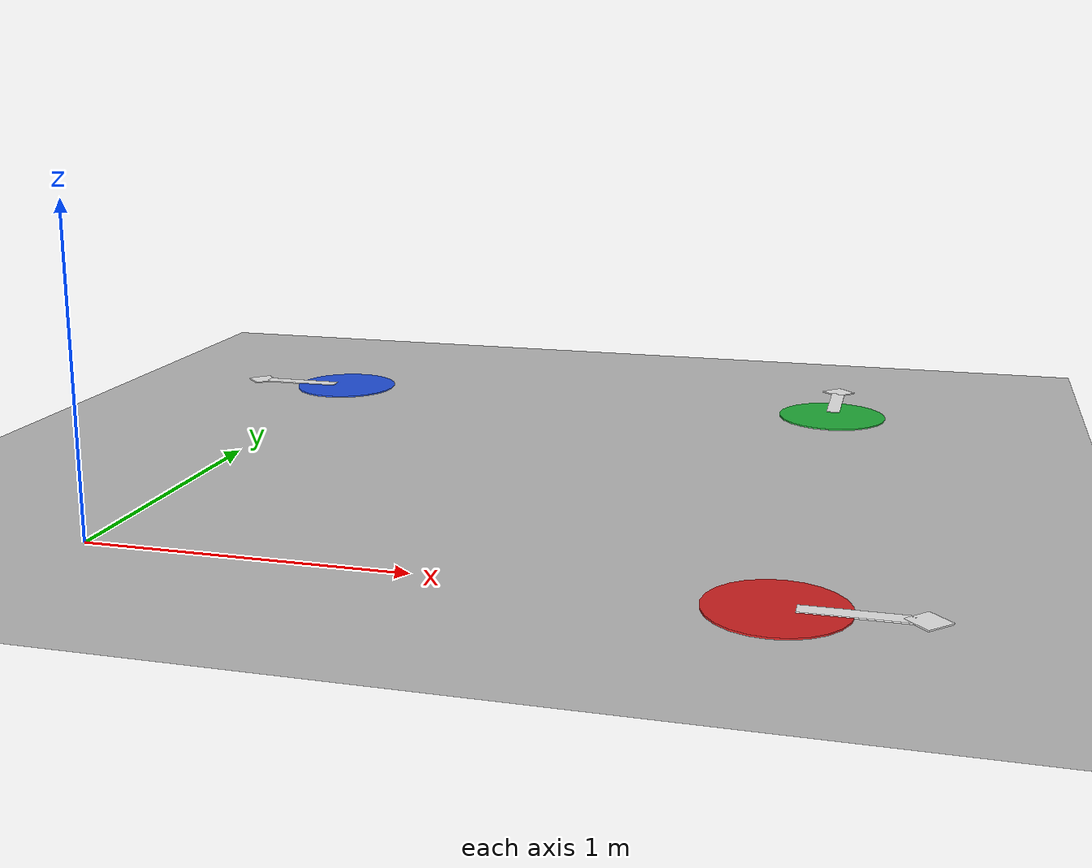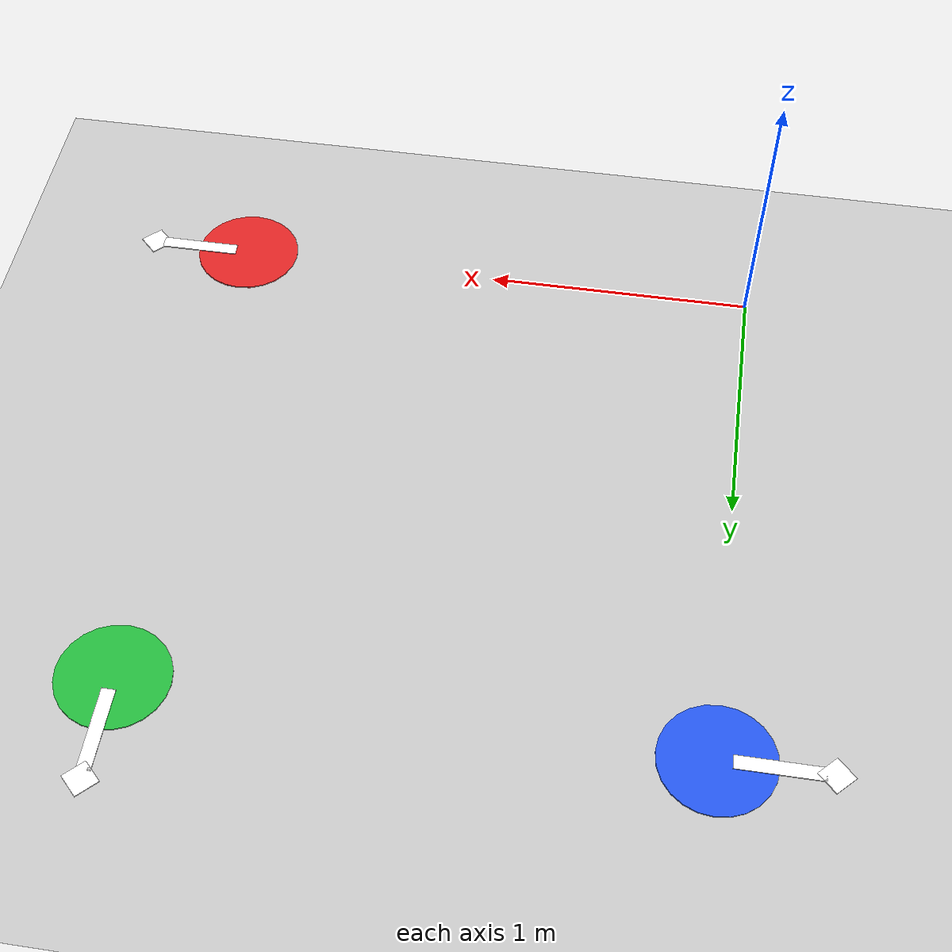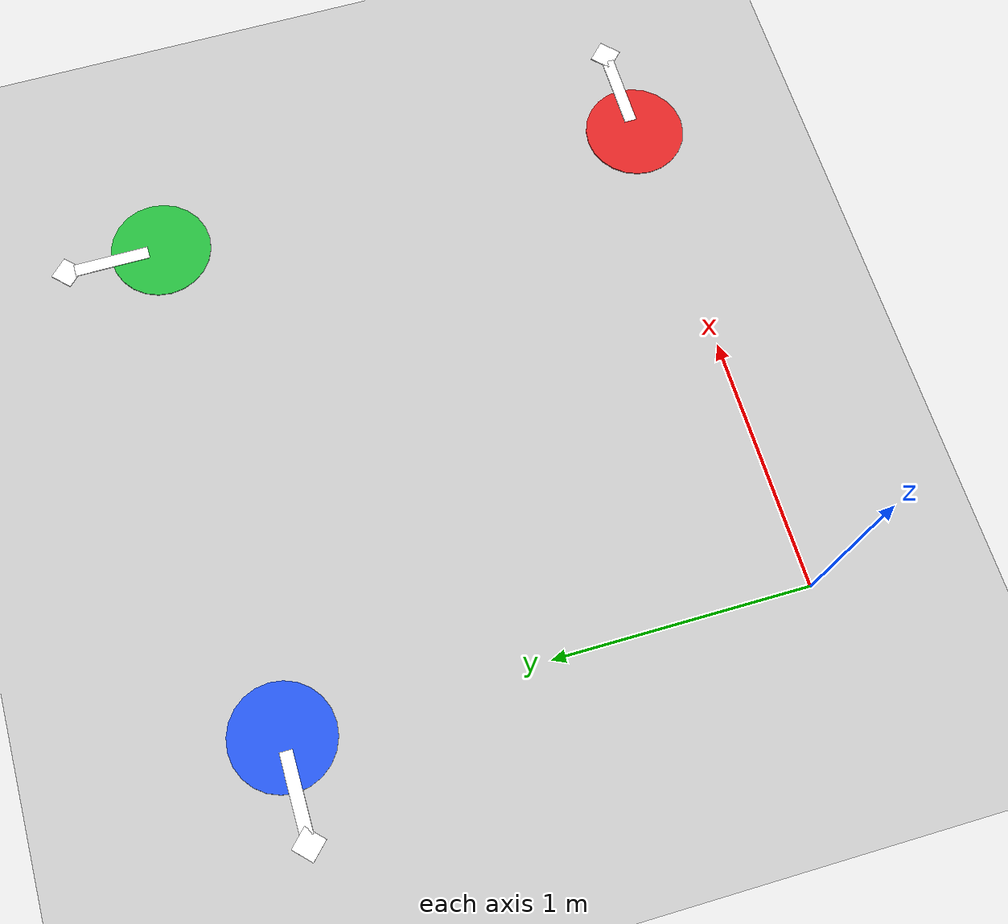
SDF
<?xml version="1.0" ?>
<sdf version="1.6">
  <world name="gp2">
    <physics name="1ms" type="ignored">
      <max_step_size>0.004</max_step_size>
      <real_time_factor>1.0</real_time_factor>
    </physics>

    <plugin filename="gz-sim-contact-system" name="gz::sim::systems::Contact" />
    <plugin filename="gz-sim-imu-system" name="gz::sim::systems::Imu" />
    <plugin filename="gz-sim-physics-system" name="gz::sim::systems::Physics" />
    <plugin filename="gz-sim-scene-broadcaster-system" name="gz::sim::systems::SceneBroadcaster" />
    <plugin filename="gz-sim-sensors-system" name="gz::sim::systems::Sensors" />
    <plugin filename="gz-sim-user-commands-system" name="gz::sim::systems::UserCommands" />

    <spherical_coordinates>
      <surface_model>EARTH_WGS84</surface_model>
      <world_frame_orientation>ENU</world_frame_orientation>
      <latitude_deg>50.088384</latitude_deg>
      <longitude_deg>19.939128</longitude_deg>
      <elevation>0</elevation>
      <heading_deg>0</heading_deg>
    </spherical_coordinates>

    <light type="directional" name="sun">
      <cast_shadows>true</cast_shadows>
      <pose>0 0 10 0 0 0</pose>
      <diffuse>0.8 0.8 0.8 1</diffuse>
      <specular>0.2 0.2 0.2 1</specular>
      <attenuation>
        <range>1000</range>
        <constant>0.9</constant>
        <linear>0.01</linear>
        <quadratic>0.001</quadratic>
      </attenuation>
      <direction>-0.5 0.1 -0.9</direction>
    </light>

    <model name="ground_plane">
      <static>true</static>
      <link name="link">
        <collision name="collision">
          <geometry>
            <plane>
              <normal>0 0 1</normal>
              <size>100 100</size>
            </plane>
          </geometry>
        </collision>
        <visual name="visual">
          <geometry>
            <plane>
              <normal>0 0 1</normal>
              <size>100 100</size>
            </plane>
          </geometry>
          <material>
            <ambient>0.8 0.8 0.8 1</ambient>
            <diffuse>0.8 0.8 0.8 1</diffuse>
            <specular>0.8 0.8 0.8 1</specular>
          </material>
        </visual>
      </link>
    </model>

    <!-- Goal markers (visual only, no collision).                         -->
    <!-- Each marker's link pose is (goal_x, goal_y, 0, 0, 0, heading),    -->
    <!-- so the arrow (authored along the marker's local +X) always        -->
    <!-- points toward the goal's final_heading.                           -->
    <!--   Goal 1: (2.0, 0.0, heading=0.0)    red                          -->
    <!--   Goal 2: (2.0, 2.0, heading=pi/2)   green                        -->
    <!--   Goal 3: (0.0, 2.0, heading=pi)     blue                         -->

    <model name="goal_marker_1">
      <static>true</static>
      <link name="link">
        <pose>2.0 0.0 0.0 0.0 0.0 0.0</pose>
        <!-- Disk (target base) -->
        <visual name="disk">
          <pose>0 0 0.0025 0 0 0</pose>
          <geometry>
            <cylinder>
              <radius>0.20</radius>
              <length>0.005</length>
            </cylinder>
          </geometry>
          <material>
            <ambient>0.90 0.15 0.15 1</ambient>
            <diffuse>0.90 0.15 0.15 1</diffuse>
            <specular>0.10 0.10 0.10 1</specular>
          </material>
        </visual>
        <!-- Arrow shaft (along local +X = heading direction) -->
        <visual name="arrow_shaft">
          <pose>0.20 0.0 0.006 0 0 0</pose>
          <geometry>
            <box>
              <size>0.30 0.05 0.004</size>
            </box>
          </geometry>
          <material>
            <ambient>1.0 1.0 1.0 1</ambient>
            <diffuse>1.0 1.0 1.0 1</diffuse>
            <specular>0.2 0.2 0.2 1</specular>
          </material>
        </visual>
        <!-- Arrow head (triangular tip, approximated by rotated box) -->
        <visual name="arrow_head">
          <pose>0.38 0.0 0.006 0 0 0.7853981633974483</pose>
          <geometry>
            <box>
              <size>0.09 0.09 0.004</size>
            </box>
          </geometry>
          <material>
            <ambient>1.0 1.0 1.0 1</ambient>
            <diffuse>1.0 1.0 1.0 1</diffuse>
            <specular>0.2 0.2 0.2 1</specular>
          </material>
        </visual>
      </link>
    </model>

    <model name="goal_marker_2">
      <static>true</static>
      <link name="link">
        <pose>2.0 2.0 0.0 0.0 0.0 1.5707963267948966</pose>
        <visual name="disk">
          <pose>0 0 0.0025 0 0 0</pose>
          <geometry>
            <cylinder>
              <radius>0.20</radius>
              <length>0.005</length>
            </cylinder>
          </geometry>
          <material>
            <ambient>0.15 0.75 0.25 1</ambient>
            <diffuse>0.15 0.75 0.25 1</diffuse>
            <specular>0.10 0.10 0.10 1</specular>
          </material>
        </visual>
        <visual name="arrow_shaft">
          <pose>0.20 0.0 0.006 0 0 0</pose>
          <geometry>
            <box>
              <size>0.30 0.05 0.004</size>
            </box>
          </geometry>
          <material>
            <ambient>1.0 1.0 1.0 1</ambient>
            <diffuse>1.0 1.0 1.0 1</diffuse>
            <specular>0.2 0.2 0.2 1</specular>
          </material>
        </visual>
        <visual name="arrow_head">
          <pose>0.38 0.0 0.006 0 0 0.7853981633974483</pose>
          <geometry>
            <box>
              <size>0.09 0.09 0.004</size>
            </box>
          </geometry>
          <material>
            <ambient>1.0 1.0 1.0 1</ambient>
            <diffuse>1.0 1.0 1.0 1</diffuse>
            <specular>0.2 0.2 0.2 1</specular>
          </material>
        </visual>
      </link>
    </model>

    <model name="goal_marker_3">
      <static>true</static>
      <link name="link">
        <pose>0.0 2.0 0.0 0.0 0.0 3.141592653589793</pose>
        <visual name="disk">
          <pose>0 0 0.0025 0 0 0</pose>
          <geometry>
            <cylinder>
              <radius>0.20</radius>
              <length>0.005</length>
            </cylinder>
          </geometry>
          <material>
            <ambient>0.15 0.35 0.95 1</ambient>
            <diffuse>0.15 0.35 0.95 1</diffuse>
            <specular>0.10 0.10 0.10 1</specular>
          </material>
        </visual>
        <visual name="arrow_shaft">
          <pose>0.20 0.0 0.006 0 0 0</pose>
          <geometry>
            <box>
              <size>0.30 0.05 0.004</size>
            </box>
          </geometry>
          <material>
            <ambient>1.0 1.0 1.0 1</ambient>
            <diffuse>1.0 1.0 1.0 1</diffuse>
            <specular>0.2 0.2 0.2 1</specular>
          </material>
        </visual>
        <visual name="arrow_head">
          <pose>0.38 0.0 0.006 0 0 0.7853981633974483</pose>
          <geometry>
            <box>
              <size>0.09 0.09 0.004</size>
            </box>
          </geometry>
          <material>
            <ambient>1.0 1.0 1.0 1</ambient>
            <diffuse>1.0 1.0 1.0 1</diffuse>
            <specular>0.2 0.2 0.2 1</specular>
          </material>
        </visual>
      </link>
    </model>

  </world>
</sdf>
